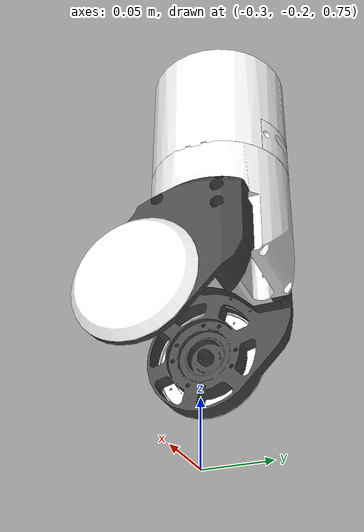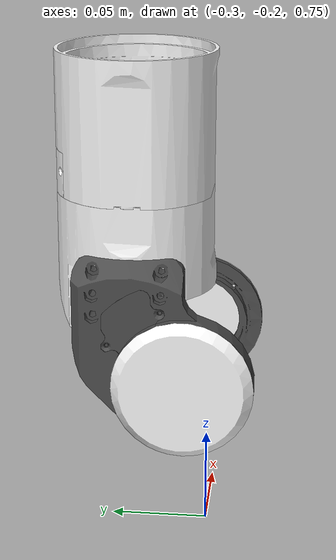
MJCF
<mujoco model="right_arm_3">
  <default>
    <default class="visual">
      <geom group="2" type="mesh" contype="0" conaffinity="0"/>
    </default>
    <default class="collision">
      <geom group="3" type="mesh"/>
    </default>
  </default>
  <asset>
    <material name="247,247,247_24.001" specular="1.0" shininess="0.2" rgba="0.968627 0.968627 0.968627 1.000000"/>
    <material name="247,247,247_25.001" specular="1.0" shininess="0.2" rgba="0.968627 0.968627 0.968627 1.000000"/>
    <material name="247,247,247_26.001" specular="1.0" shininess="0.2" rgba="0.968627 0.968627 0.968627 1.000000"/>
    <material name="247,247,247_32.002" specular="1.0" shininess="0.2" rgba="0.968627 0.968627 0.968627 1.000000"/>
    <material name="247,247,247_32.003" specular="1.0" shininess="0.2" rgba="0.968627 0.968627 0.968627 1.000000"/>
    <material name="254,254,255_48.001" specular="1.0" shininess="0.2" rgba="0.996078 0.996078 1.000000 1.000000"/>
    <material name="69,69,69_6.001" specular="1.0" shininess="0.2" rgba="0.270588 0.270588 0.270588 1.000000"/>
    <material name="75,75,75_45.001" specular="1.0" shininess="0.2" rgba="0.294118 0.294118 0.294118 1.000000"/>
    <material name="75,75,75_46.001" specular="1.0" shininess="0.2" rgba="0.294118 0.294118 0.294118 1.000000"/>
    <material name="75,75,75_47.001" specular="1.0" shininess="0.2" rgba="0.294118 0.294118 0.294118 1.000000"/>
    <mesh file="right_arm_3_0.obj"/>
    <mesh file="right_arm_3_1.obj"/>
    <mesh file="right_arm_3_2.obj"/>
    <mesh file="right_arm_3_3.obj"/>
    <mesh file="right_arm_3_4.obj"/>
    <mesh file="right_arm_3_5.obj"/>
    <mesh file="right_arm_3_6.obj"/>
    <mesh file="right_arm_3_7.obj"/>
    <mesh file="right_arm_3_8.obj"/>
    <mesh file="right_arm_3_9.obj"/>
  </asset>
  <worldbody>
    <body name="right_arm_3">
      <geom mesh="right_arm_3_0" material="69,69,69_6.001" class="visual"/>
      <geom mesh="right_arm_3_1" material="254,254,255_48.001" class="visual"/>
      <geom mesh="right_arm_3_2" material="75,75,75_46.001" class="visual"/>
      <geom mesh="right_arm_3_3" material="75,75,75_45.001" class="visual"/>
      <geom mesh="right_arm_3_4" material="247,247,247_32.002" class="visual"/>
      <geom mesh="right_arm_3_5" material="247,247,247_32.003" class="visual"/>
      <geom mesh="right_arm_3_6" material="75,75,75_47.001" class="visual"/>
      <geom mesh="right_arm_3_7" material="247,247,247_26.001" class="visual"/>
      <geom mesh="right_arm_3_8" material="247,247,247_25.001" class="visual"/>
      <geom mesh="right_arm_3_9" material="247,247,247_24.001" class="visual"/>
      <geom mesh="right_arm_3_0" class="collision"/>
      <geom mesh="right_arm_3_1" class="collision"/>
      <geom mesh="right_arm_3_2" class="collision"/>
      <geom mesh="right_arm_3_3" class="collision"/>
      <geom mesh="right_arm_3_4" class="collision"/>
      <geom mesh="right_arm_3_5" class="collision"/>
      <geom mesh="right_arm_3_6" class="collision"/>
      <geom mesh="right_arm_3_7" class="collision"/>
      <geom mesh="right_arm_3_8" class="collision"/>
      <geom mesh="right_arm_3_9" class="collision"/>
    </body>
  </worldbody>
</mujoco>
